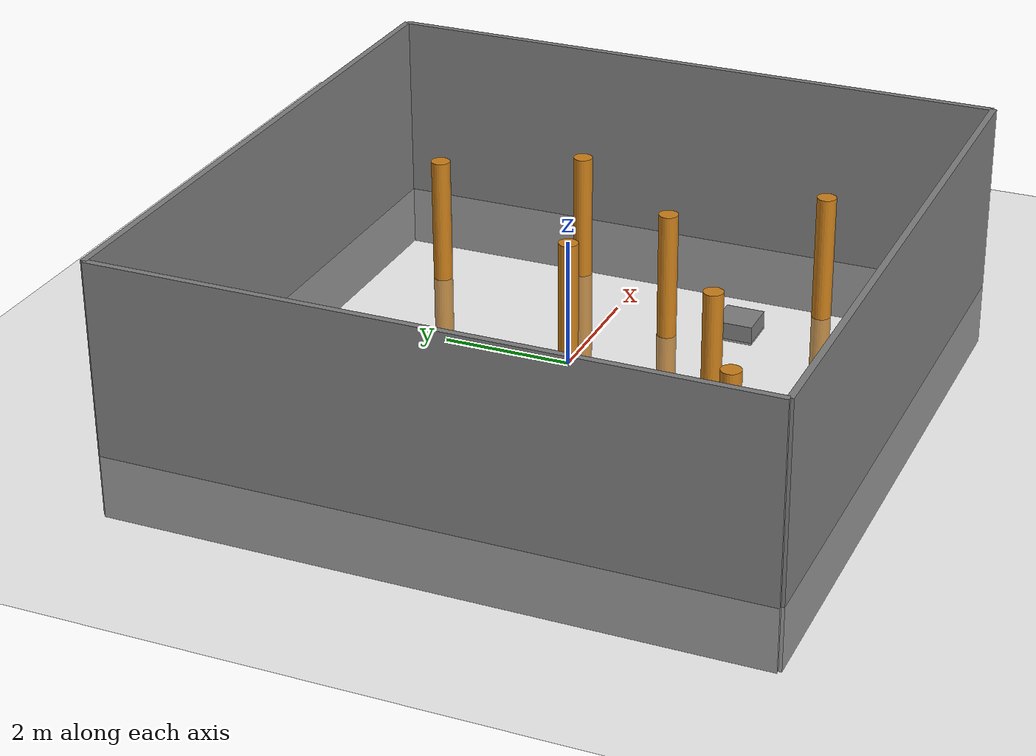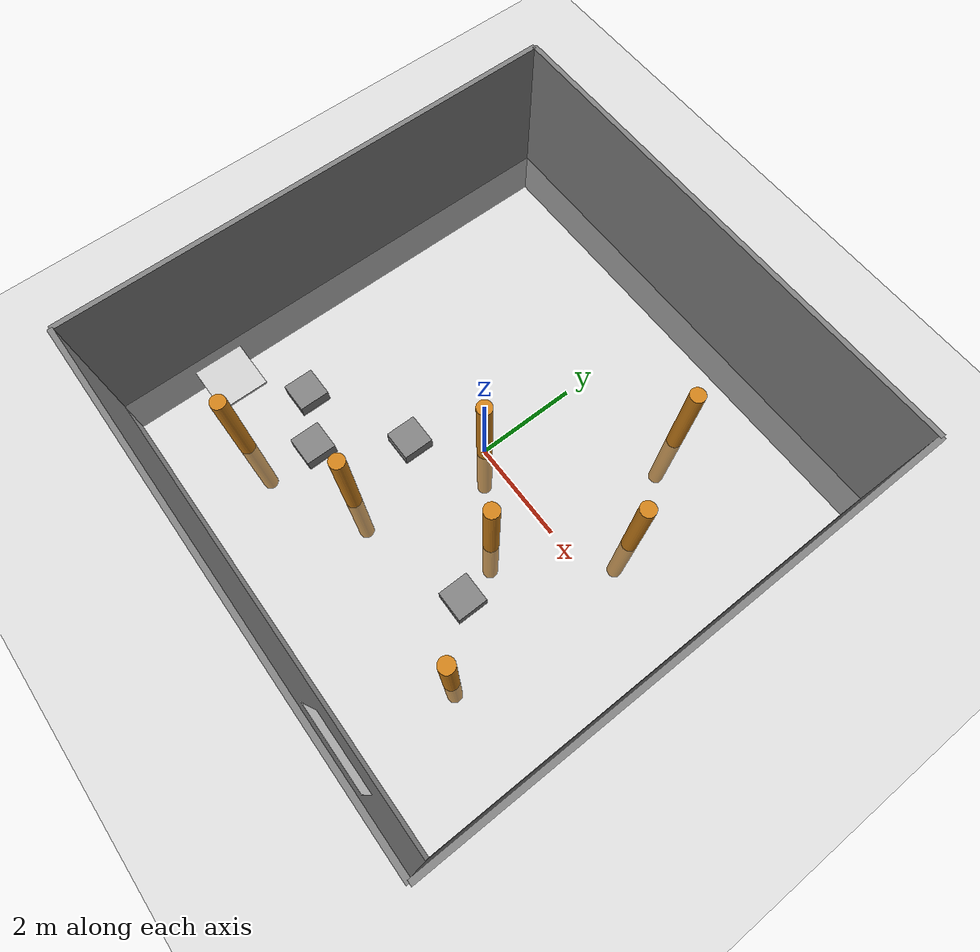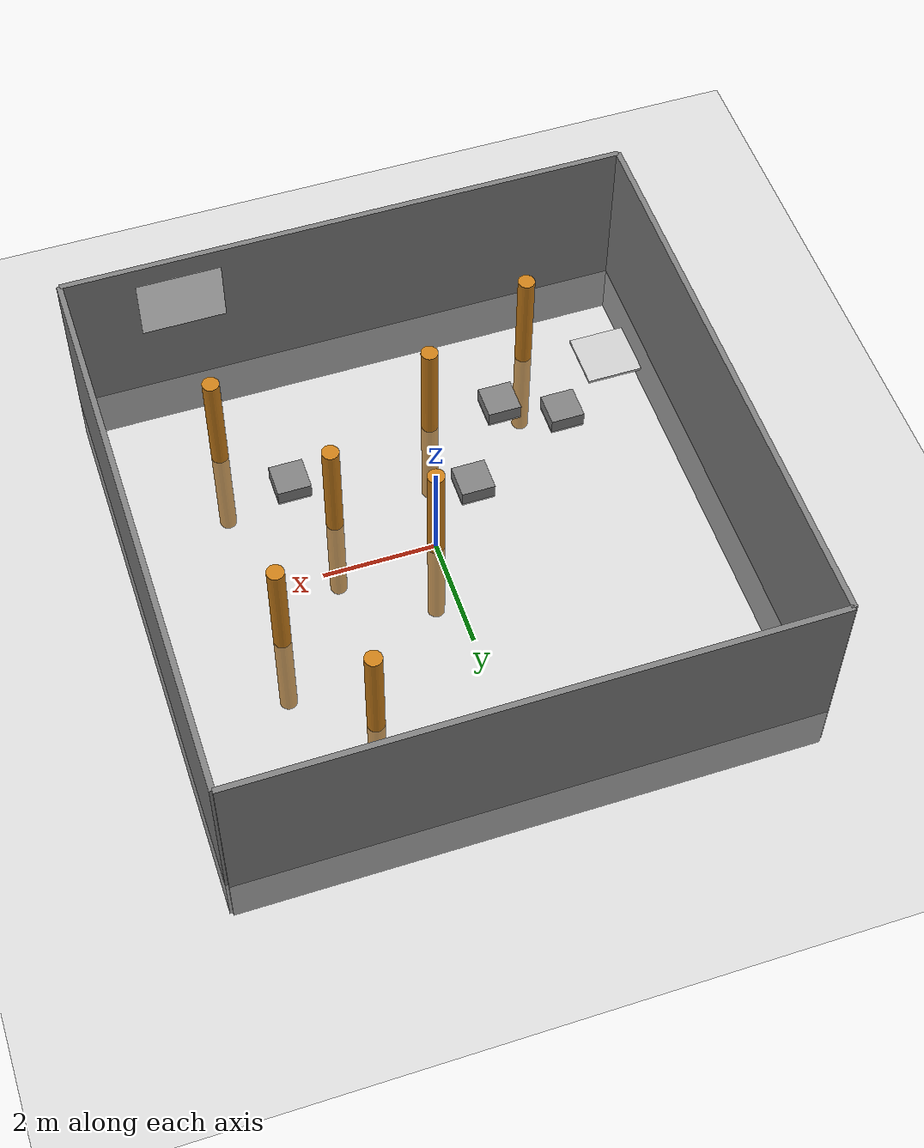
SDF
<sdf version="1.9">
 <world name="imav_indoor">
  <physics type="ode">
   <max_step_size>0.004</max_step_size>
   <real_time_factor>1.0</real_time_factor>
   <real_time_update_rate>250</real_time_update_rate>
  </physics>
  <plugin filename="gz-sim-physics-system" name="gz::sim::systems::Physics"/>
  <plugin filename="gz-sim-user-commands-system" name="gz::sim::systems::UserCommands"/>
  <plugin filename="gz-sim-scene-broadcaster-system" name="gz::sim::systems::SceneBroadcaster"/>
  <plugin filename="gz-sim-contact-system" name="gz::sim::systems::Contact"/>
  <plugin filename="gz-sim-imu-system" name="gz::sim::systems::Imu"/>
  <plugin filename="gz-sim-air-pressure-system" name="gz::sim::systems::AirPressure"/>
  <plugin filename="gz-sim-apply-link-wrench-system" name="gz::sim::systems::ApplyLinkWrench"/>
  <plugin filename="gz-sim-navsat-system" name="gz::sim::systems::NavSat"/>
  <plugin filename="gz-sim-particle-emitter-system" name="gz::sim::systems::ParticleEmitter"/>
  <plugin filename="gz-sim-sensors-system" name="gz::sim::systems::Sensors">
   <render_engine>ogre2</render_engine>
  </plugin>
  <gravity>0 0 -9.8</gravity>
  <magnetic_field>6e-06 2.3e-05 -4.2e-05</magnetic_field>
  <atmosphere type="adiabatic"/>
  <scene>
   <grid>false</grid>
   <ambient>0.4 0.4 0.4 1</ambient>
   <background>0.7 0.7 0.7 1</background>
   <shadows>true</shadows>
  </scene>
  <light name="ambient_fill" type="point">
   <pose>0 0 4 0 0 0</pose>
   <diffuse>0.85 0.8 0.8 1</diffuse>
   <specular>0.8 0.8 0.8 1</specular>
   <cast_shadows>false</cast_shadows>
   <attenuation>
    <range>20</range>
    <constant>0.8</constant>
    <linear>0.001</linear>
    <quadratic>0.0001</quadratic>
   </attenuation>
  </light>
  <model name="ground_plane">
   <static>true</static>
   <link name="link">
    <collision name="collision">
     <geometry><plane><normal>0 0 1</normal><size>1 1</size></plane></geometry>
    </collision>
    <visual name="visual">
     <geometry><plane><normal>0 0 1</normal><size>100 100</size></plane></geometry>
     <material>
      <ambient>0.7 0.7 0.7 1</ambient>
      <diffuse>0.7 0.7 0.7 1</diffuse>
      <specular>0.7 0.7 0.7 1</specular>
     </material>
    </visual>
    <inertial>
     <mass>1</mass>
     <inertia><ixx>1</ixx><ixy>0</ixy><ixz>0</ixz><iyy>1</iyy><iyz>0</iyz><izz>1</izz></inertia>
    </inertial>
   </link>
  </model>
  <spherical_coordinates>
   <surface_model>EARTH_WGS84</surface_model>
   <world_frame_orientation>ENU</world_frame_orientation>
   <latitude_deg>47.397971057728974</latitude_deg>
   <longitude_deg>8.546163739800146</longitude_deg>
   <elevation>0</elevation>
  </spherical_coordinates>
  <model name="north_wall">
   <static>true</static>
   <pose>0 5 1 0 0 0</pose>
   <link name="link">
    <collision name="collision"><geometry><box><size>10 0.1 4</size></box></geometry></collision>
    <visual name="visual">
     <geometry><box><size>10 0.1 4</size></box></geometry>
     <material><ambient>0.5 0.5 0.5 1</ambient><diffuse>0.5 0.5 0.5 1</diffuse></material>
    </visual>
   </link>
  </model>
  <model name="south_wall">
   <static>true</static>
   <pose>0 -5 1 0 0 0</pose>
   <link name="link">
    <collision name="collision"><geometry><box><size>10 0.1 4</size></box></geometry></collision>
    <visual name="visual">
     <geometry><box><size>10 0.1 4</size></box></geometry>
     <material><ambient>0.5 0.5 0.5 1</ambient><diffuse>0.5 0.5 0.5 1</diffuse></material>
    </visual>
   </link>
  </model>
  <model name="east_wall">
   <static>true</static>
   <pose>5 0 1 0 0 0</pose>
   <link name="link">
    <collision name="collision"><geometry><box><size>0.1 10 4</size></box></geometry></collision>
    <visual name="visual">
     <geometry><box><size>0.1 10 4</size></box></geometry>
     <material><ambient>0.5 0.5 0.5 1</ambient><diffuse>0.5 0.5 0.5 1</diffuse></material>
    </visual>
   </link>
  </model>
  <model name="west_wall">
   <static>true</static>
   <pose>-5 0 1 0 0 0</pose>
   <link name="link">
    <collision name="collision"><geometry><box><size>0.1 10 4</size></box></geometry></collision>
    <visual name="visual">
     <geometry><box><size>0.1 10 4</size></box></geometry>
     <material><ambient>0.5 0.5 0.5 1</ambient><diffuse>0.5 0.5 0.5 1</diffuse></material>
    </visual>
   </link>
  </model>
  <model name="landing_zone">
   <pose>-4.2 -3 0.04 0 0 0</pose>
   <link name="link">
    <collision name="collision"><geometry><box><size>1 1 0.05</size></box></geometry></collision>
    <visual name="visual">
     <geometry><box><size>1 1 0.05</size></box></geometry>
     <material>
      <ambient>0.8 0.8 0.8 1</ambient>
      <diffuse>0.8 0.8 0.8 1</diffuse>
      <specular>0.8 0.8 0.8 1</specular>
      <emissive>0 0 0 1</emissive>
      <pbr>
       <metal>
        <albedo_map>model://landing-sign/landing.png</albedo_map>
        <normal_map>model://landing-sign/landing.png</normal_map>
       </metal>
      </pbr>
     </material>
    </visual>
   </link>
   <plugin filename="OscillatingPlatformPlugin" name="gz::sim::covenant::OscillatingPlatformPlugin">
    <amplitude>1.0</amplitude>
    <period>4</period>
    <axis>y</axis>
    <link>link</link>
   </plugin>
  </model>
  <model name="obstacle_1">
   <static>true</static>
   <link name="link">
    <collision name="collision">
     <geometry><cylinder><radius>0.15</radius><length>4</length></cylinder></geometry>
    </collision>
    <visual name="visual">
     <geometry><cylinder><radius>0.15</radius><length>4</length></cylinder></geometry>
     <material>
      <ambient>0.8 0.5 0.1 1</ambient>
      <diffuse>0.8 0.5 0.1 1</diffuse>
      <specular>0.8 0.5 0.1 1</specular>
      <emissive>0 0 0 1</emissive>
     </material>
    </visual>
   </link>
  </model>
  <model name="obstacle_2">
   <static>true</static>
   <pose>2 3 0 0 0 0</pose>
   <link name="link">
    <collision name="collision">
     <geometry><cylinder><radius>0.15</radius><length>4</length></cylinder></geometry>
    </collision>
    <visual name="visual">
     <geometry><cylinder><radius>0.15</radius><length>4</length></cylinder></geometry>
     <material>
      <ambient>0.8 0.5 0.1 1</ambient>
      <diffuse>0.8 0.5 0.1 1</diffuse>
      <specular>0.8 0.5 0.1 1</specular>
      <emissive>0 0 0 1</emissive>
     </material>
    </visual>
   </link>
  </model>
  <model name="obstacle_3">
   <static>true</static>
   <pose>3 -3 0 0 0 0</pose>
   <link name="link">
    <collision name="collision">
     <geometry><cylinder><radius>0.15</radius><length>4</length></cylinder></geometry>
    </collision>
    <visual name="visual">
     <geometry><cylinder><radius>0.15</radius><length>4</length></cylinder></geometry>
     <material>
      <ambient>0.8 0.5 0.1 1</ambient>
      <diffuse>0.8 0.5 0.1 1</diffuse>
      <specular>0.8 0.5 0.1 1</specular>
      <emissive>0 0 0 1</emissive>
     </material>
    </visual>
   </link>
  </model>
  <model name="obstacle_4">
   <static>true</static>
   <pose>-2.8 -3.5 0 0 0 0</pose>
   <link name="link">
    <collision name="collision">
     <geometry><cylinder><radius>0.15</radius><length>4</length></cylinder></geometry>
    </collision>
    <visual name="visual">
     <geometry><cylinder><radius>0.15</radius><length>4</length></cylinder></geometry>
     <material>
      <ambient>0.8 0.5 0.1 1</ambient>
      <diffuse>0.8 0.5 0.1 1</diffuse>
      <specular>0.8 0.5 0.1 1</specular>
      <emissive>0 0 0 1</emissive>
     </material>
    </visual>
   </link>
  </model>
  <model name="obstacle_5">
   <static>true</static>
   <pose>3 1 0 0 0 0</pose>
   <link name="link">
    <collision name="collision">
     <geometry><cylinder><radius>0.15</radius><length>4</length></cylinder></geometry>
    </collision>
    <visual name="visual">
     <geometry><cylinder><radius>0.15</radius><length>4</length></cylinder></geometry>
     <material>
      <ambient>0.8 0.5 0.1 1</ambient>
      <diffuse>0.8 0.5 0.1 1</diffuse>
      <specular>0.8 0.5 0.1 1</specular>
      <emissive>0 0 0 1</emissive>
     </material>
    </visual>
   </link>
  </model>
  <model name="obstacle_6">
   <static>true</static>
   <pose>-0.7 -2.5 0 0 0 0</pose>
   <link name="link">
    <collision name="collision">
     <geometry><cylinder><radius>0.15</radius><length>4</length></cylinder></geometry>
    </collision>
    <visual name="visual">
     <geometry><cylinder><radius>0.15</radius><length>4</length></cylinder></geometry>
     <material>
      <ambient>0.8 0.5 0.1 1</ambient>
      <diffuse>0.8 0.5 0.1 1</diffuse>
      <specular>0.8 0.5 0.1 1</specular>
      <emissive>0 0 0 1</emissive>
     </material>
    </visual>
   </link>
  </model>
  <model name="obstacle_7">
   <static>true</static>
   <pose>1.5 -1 0 0 0 0</pose>
   <link name="link">
    <collision name="collision">
     <geometry><cylinder><radius>0.15</radius><length>4</length></cylinder></geometry>
    </collision>
    <visual name="visual">
     <geometry><cylinder><radius>0.15</radius><length>4</length></cylinder></geometry>
     <material>
      <ambient>0.8 0.5 0.1 1</ambient>
      <diffuse>0.8 0.5 0.1 1</diffuse>
      <specular>0.8 0.5 0.1 1</specular>
      <emissive>0 0 0 1</emissive>
     </material>
    </visual>
   </link>
  </model>
  <model name="white_board">
   <static>true</static>
   <pose>3 -4.94 2 1.57079632 0 3.141569</pose>
   <link name="link">
    <collision name="collision"><geometry><plane><size>1.5 1.2</size></plane></geometry></collision>
    <visual name="visual">
     <geometry><plane><size>1.5 1.2</size></plane></geometry>
     <material>
      <ambient>0.95 0.95 0.95 1.0</ambient>
      <diffuse>0.98 0.98 0.98 1.0</diffuse>
      <specular>0.9 0.9 0.9 1.0</specular>
      <shininess>128</shininess>
     </material>
    </visual>
   </link>
  </model>
  <model name="box">
   <static>true</static>
   <pose>-1 -1 0.1 0 0 0</pose>
   <link name="link">
    <collision name="collision"><geometry><box><size>.60 .60 0.3</size></box></geometry></collision>
    <visual name="visual">
     <geometry><box><size>.60 .60 0.3</size></box></geometry>
     <material><ambient>0.5 0.5 0.5 1</ambient><diffuse>0.5 0.5 0.5 1</diffuse></material>
    </visual>
   </link>
   <plugin filename="gz-sim-logicalaudiosensorplugin-system" name="gz::sim::systems::LogicalAudioSensorPlugin">
    <source>
     <id>1</id>
     <attenuation_function>linear</attenuation_function>
     <attenuation_shape>sphere</attenuation_shape>
     <inner_radius>1.0</inner_radius>
     <falloff_distance>5.0</falloff_distance>
     <volume_level>.8</volume_level>
     <playing>true</playing>
     <play_duration>0</play_duration>
    </source>
   </plugin>
  </model>
  <model name="fake_box_1">
   <static>true</static>
   <pose>-2 -2.5 0.1 0 0 0</pose>
   <link name="link">
    <collision name="collision"><geometry><box><size>.60 .60 0.3</size></box></geometry></collision>
    <visual name="visual">
     <geometry><box><size>.60 .60 0.3</size></box></geometry>
     <material><ambient>0.5 0.5 0.5 1</ambient><diffuse>0.5 0.5 0.5 1</diffuse></material>
    </visual>
   </link>
  </model>
  <model name="fake_box_2">
   <static>true</static>
   <pose>2 -2 0.1 0 0 0</pose>
   <link name="link">
    <collision name="collision"><geometry><box><size>.60 .60 0.3</size></box></geometry></collision>
    <visual name="visual">
     <geometry><box><size>.60 .60 0.3</size></box></geometry>
     <material><ambient>0.5 0.5 0.5 1</ambient><diffuse>0.5 0.5 0.5 1</diffuse></material>
    </visual>
   </link>
  </model>
  <model name="fake_box_3">
   <static>true</static>
   <pose>-3 -2 0.1 0 0 0</pose>
   <link name="link">
    <collision name="collision"><geometry><box><size>.60 .60 0.3</size></box></geometry></collision>
    <visual name="visual">
     <geometry><box><size>.60 .60 0.3</size></box></geometry>
     <material><ambient>0.5 0.5 0.5 1</ambient><diffuse>0.5 0.5 0.5 1</diffuse></material>
    </visual>
   </link>
  </model>
  <include>
   <uri>model://fog_generator</uri>
   <pose relative_to="landing_zone">0 -1.5 0 0 0 1.57079632</pose>
  </include>
 </world>
</sdf>

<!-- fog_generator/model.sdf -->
<sdf version="1.6">
  <model name="fog_generator">
    <pose>0 0 0 0 0 -1.5707</pose>
    <static>true</static>
    <link name="fog_link">
      <particle_emitter name="emitter" type="box">
        <emitting>true</emitting>
        <size>2 2 0</size>
        <particle_size>1 1 1</particle_size>
        <lifetime>25</lifetime>
        <min_velocity>0.1</min_velocity>
        <max_velocity>0.2</max_velocity>
        <scale_rate>0.5</scale_rate>
        <rate>5</rate>
        <material>
          <diffuse>0.7 0.7 0.7</diffuse>
          <specular>1.0 1.0 1.0</specular>
          <pbr>
            <metal>
              <albedo_map>materials/textures/fog.png</albedo_map>
            </metal>
          </pbr>
        </material>
        <color_range_image>/usr/local/share/px4/Tools/simulation/gz/models/fog_generator/materials/textures/fogcolors.png</color_range_image>
      </particle_emitter>
    </link>
  </model>
</sdf>
